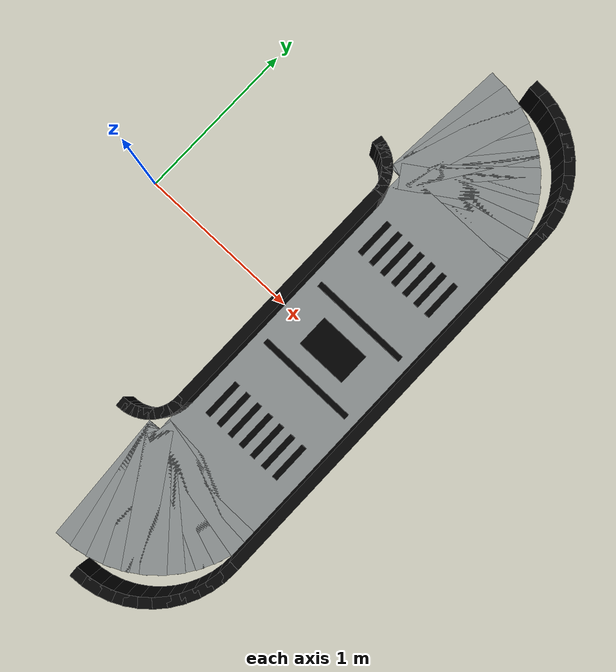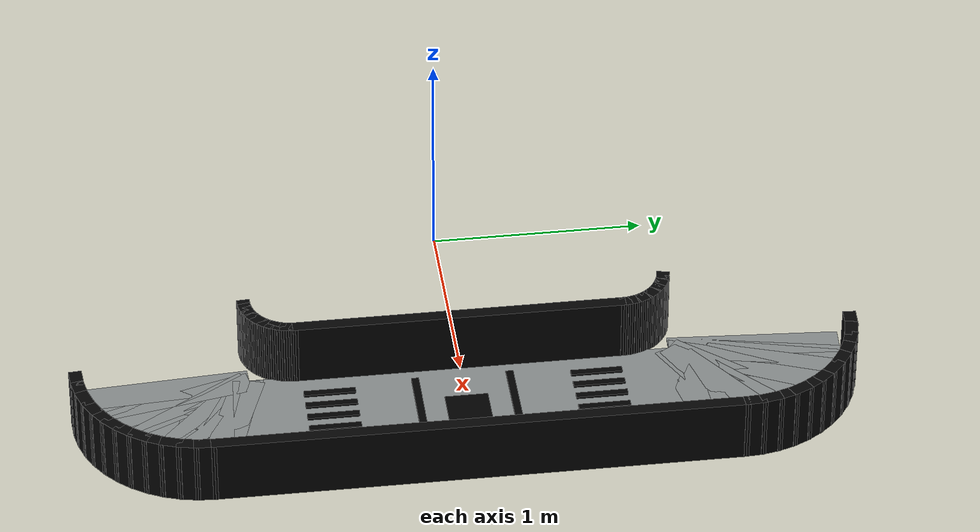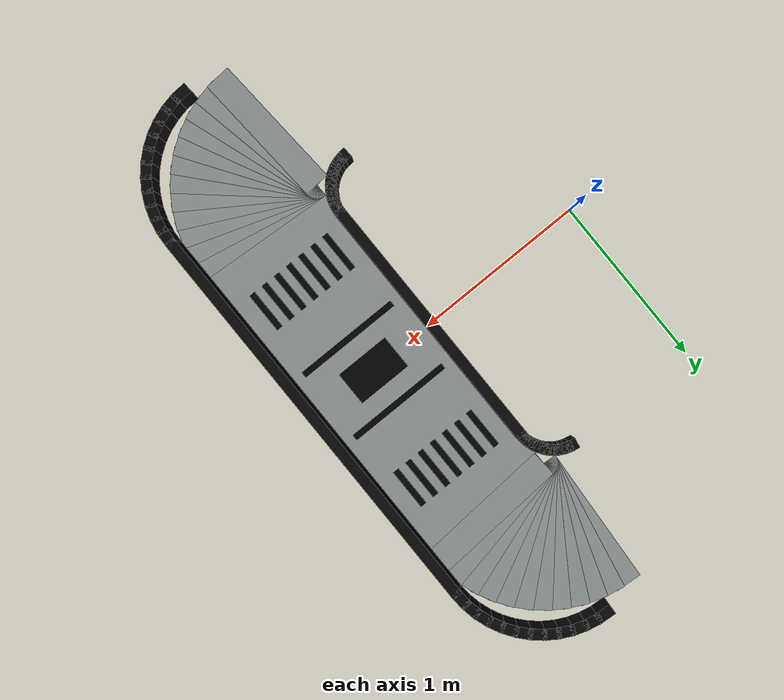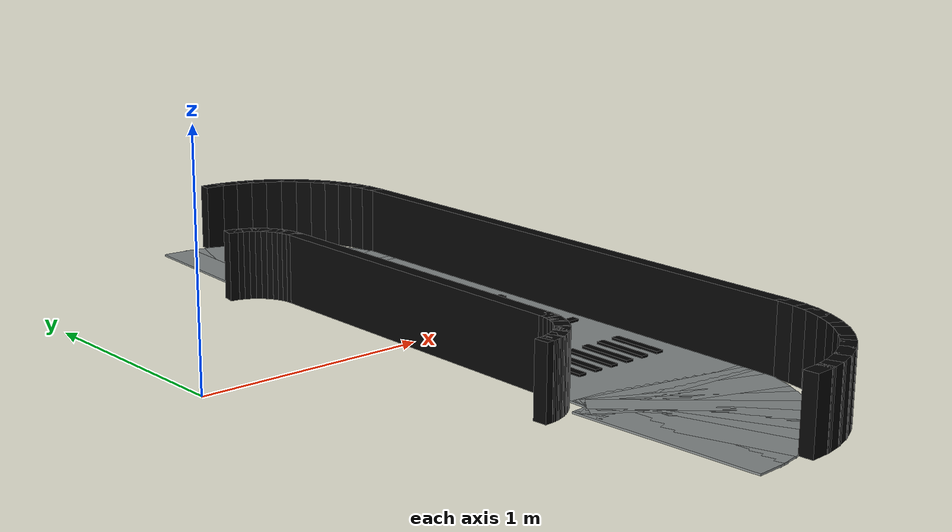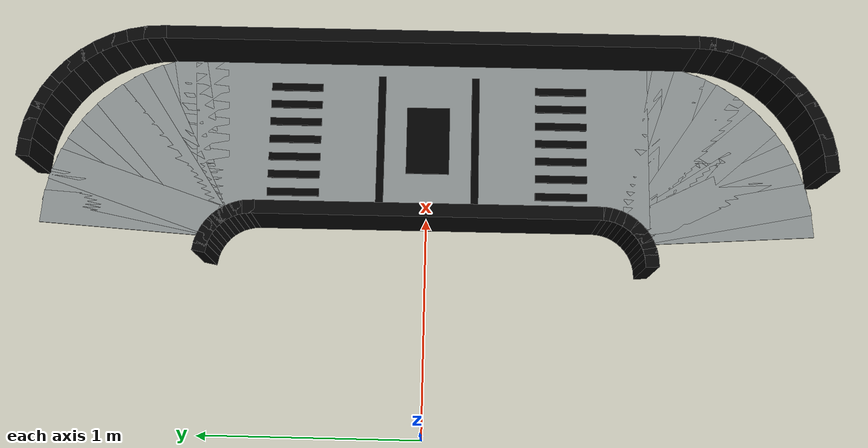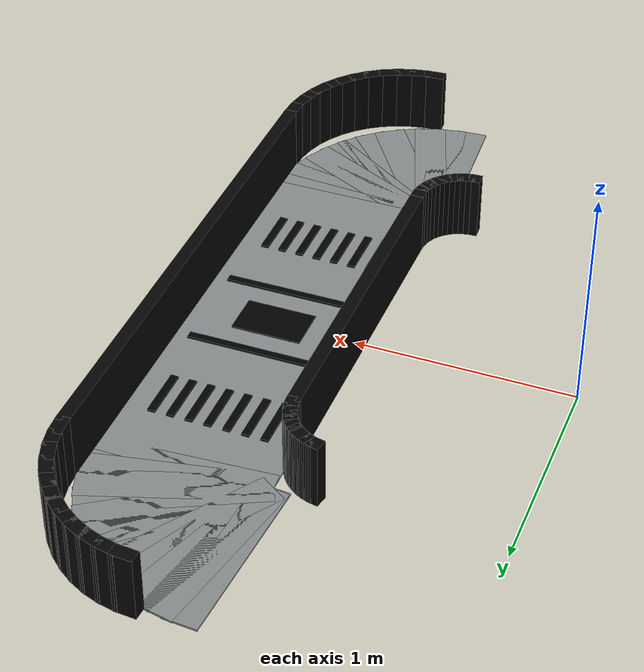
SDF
<sdf version="1.6">
 <world name="raicom_safe_city">
  <include><uri>model://sun</uri></include>
  <model name="safe_city_wall_track_80cm">
   <static>true</static>
   <link name="road_tile_01">
    <pose>1.3783 1.0061 0.0020 0 0 1.636246</pose>
    <visual name="visual">
     <geometry><box><size>0.1523 0.8000 0.0080</size></box></geometry>
     <material><ambient>0.540 0.560 0.560 1.000</ambient><diffuse>0.540 0.560 0.560 1.000</diffuse></material>
    </visual>
   </link>
   <link name="road_tile_02">
    <pose>1.3715 1.0579 0.0020 0 0 1.767146</pose>
    <visual name="visual">
     <geometry><box><size>0.1523 0.8000 0.0080</size></box></geometry>
     <material><ambient>0.540 0.560 0.560 1.000</ambient><diffuse>0.540 0.560 0.560 1.000</diffuse></material>
    </visual>
   </link>
   <link name="road_tile_03">
    <pose>1.3580 1.1083 0.0020 0 0 1.898046</pose>
    <visual name="visual">
     <geometry><box><size>0.1523 0.8000 0.0080</size></box></geometry>
     <material><ambient>0.540 0.560 0.560 1.000</ambient><diffuse>0.540 0.560 0.560 1.000</diffuse></material>
    </visual>
   </link>
   <link name="road_tile_04">
    <pose>1.3380 1.1565 0.0020 0 0 2.028945</pose>
    <visual name="visual">
     <geometry><box><size>0.1523 0.8000 0.0080</size></box></geometry>
     <material><ambient>0.540 0.560 0.560 1.000</ambient><diffuse>0.540 0.560 0.560 1.000</diffuse></material>
    </visual>
   </link>
   <link name="road_tile_05">
    <pose>1.3119 1.2018 0.0020 0 0 2.159845</pose>
    <visual name="visual">
     <geometry><box><size>0.1523 0.8000 0.0080</size></box></geometry>
     <material><ambient>0.540 0.560 0.560 1.000</ambient><diffuse>0.540 0.560 0.560 1.000</diffuse></material>
    </visual>
   </link>
   <link name="road_tile_06">
    <pose>1.2801 1.2432 0.0020 0 0 2.290745</pose>
    <visual name="visual">
     <geometry><box><size>0.1523 0.8000 0.0080</size></box></geometry>
     <material><ambient>0.540 0.560 0.560 1.000</ambient><diffuse>0.540 0.560 0.560 1.000</diffuse></material>
    </visual>
   </link>
   <link name="road_tile_07">
    <pose>1.2432 1.2801 0.0020 0 0 2.421644</pose>
    <visual name="visual">
     <geometry><box><size>0.1523 0.8000 0.0080</size></box></geometry>
     <material><ambient>0.540 0.560 0.560 1.000</ambient><diffuse>0.540 0.560 0.560 1.000</diffuse></material>
    </visual>
   </link>
   <link name="road_tile_08">
    <pose>1.2018 1.3119 0.0020 0 0 2.552544</pose>
    <visual name="visual">
     <geometry><box><size>0.1523 0.8000 0.0080</size></box></geometry>
     <material><ambient>0.540 0.560 0.560 1.000</ambient><diffuse>0.540 0.560 0.560 1.000</diffuse></material>
    </visual>
   </link>
   <link name="road_tile_09">
    <pose>1.1565 1.3380 0.0020 0 0 2.683444</pose>
    <visual name="visual">
     <geometry><box><size>0.1523 0.8000 0.0080</size></box></geometry>
     <material><ambient>0.540 0.560 0.560 1.000</ambient><diffuse>0.540 0.560 0.560 1.000</diffuse></material>
    </visual>
   </link>
   <link name="road_tile_10">
    <pose>1.1083 1.3580 0.0020 0 0 2.814343</pose>
    <visual name="visual">
     <geometry><box><size>0.1523 0.8000 0.0080</size></box></geometry>
     <material><ambient>0.540 0.560 0.560 1.000</ambient><diffuse>0.540 0.560 0.560 1.000</diffuse></material>
    </visual>
   </link>
   <link name="road_tile_11">
    <pose>1.0579 1.3715 0.0020 0 0 2.945243</pose>
    <visual name="visual">
     <geometry><box><size>0.1523 0.8000 0.0080</size></box></geometry>
     <material><ambient>0.540 0.560 0.560 1.000</ambient><diffuse>0.540 0.560 0.560 1.000</diffuse></material>
    </visual>
   </link>
   <link name="road_tile_12">
    <pose>1.0061 1.3783 0.0020 0 0 3.076143</pose>
    <visual name="visual">
     <geometry><box><size>0.1523 0.8000 0.0080</size></box></geometry>
     <material><ambient>0.540 0.560 0.560 1.000</ambient><diffuse>0.540 0.560 0.560 1.000</diffuse></material>
    </visual>
   </link>
   <link name="road_tile_40">
    <pose>1.0061 -1.3783 0.0020 0 0 0.065450</pose>
    <visual name="visual">
     <geometry><box><size>0.1523 0.8000 0.0080</size></box></geometry>
     <material><ambient>0.540 0.560 0.560 1.000</ambient><diffuse>0.540 0.560 0.560 1.000</diffuse></material>
    </visual>
   </link>
   <link name="road_tile_41">
    <pose>1.0579 -1.3715 0.0020 0 0 0.196350</pose>
    <visual name="visual">
     <geometry><box><size>0.1523 0.8000 0.0080</size></box></geometry>
     <material><ambient>0.540 0.560 0.560 1.000</ambient><diffuse>0.540 0.560 0.560 1.000</diffuse></material>
    </visual>
   </link>
   <link name="road_tile_42">
    <pose>1.1083 -1.3580 0.0020 0 0 0.327249</pose>
    <visual name="visual">
     <geometry><box><size>0.1523 0.8000 0.0080</size></box></geometry>
     <material><ambient>0.540 0.560 0.560 1.000</ambient><diffuse>0.540 0.560 0.560 1.000</diffuse></material>
    </visual>
   </link>
   <link name="road_tile_43">
    <pose>1.1565 -1.3380 0.0020 0 0 0.458149</pose>
    <visual name="visual">
     <geometry><box><size>0.1523 0.8000 0.0080</size></box></geometry>
     <material><ambient>0.540 0.560 0.560 1.000</ambient><diffuse>0.540 0.560 0.560 1.000</diffuse></material>
    </visual>
   </link>
   <link name="road_tile_44">
    <pose>1.2018 -1.3119 0.0020 0 0 0.589049</pose>
    <visual name="visual">
     <geometry><box><size>0.1523 0.8000 0.0080</size></box></geometry>
     <material><ambient>0.540 0.560 0.560 1.000</ambient><diffuse>0.540 0.560 0.560 1.000</diffuse></material>
    </visual>
   </link>
   <link name="road_tile_45">
    <pose>1.2432 -1.2801 0.0020 0 0 0.719948</pose>
    <visual name="visual">
     <geometry><box><size>0.1523 0.8000 0.0080</size></box></geometry>
     <material><ambient>0.540 0.560 0.560 1.000</ambient><diffuse>0.540 0.560 0.560 1.000</diffuse></material>
    </visual>
   </link>
   <link name="road_tile_46">
    <pose>1.2801 -1.2432 0.0020 0 0 0.850848</pose>
    <visual name="visual">
     <geometry><box><size>0.1523 0.8000 0.0080</size></box></geometry>
     <material><ambient>0.540 0.560 0.560 1.000</ambient><diffuse>0.540 0.560 0.560 1.000</diffuse></material>
    </visual>
   </link>
   <link name="road_tile_47">
    <pose>1.3119 -1.2018 0.0020 0 0 0.981748</pose>
    <visual name="visual">
     <geometry><box><size>0.1523 0.8000 0.0080</size></box></geometry>
     <material><ambient>0.540 0.560 0.560 1.000</ambient><diffuse>0.540 0.560 0.560 1.000</diffuse></material>
    </visual>
   </link>
   <link name="road_tile_48">
    <pose>1.3380 -1.1565 0.0020 0 0 1.112647</pose>
    <visual name="visual">
     <geometry><box><size>0.1523 0.8000 0.0080</size></box></geometry>
     <material><ambient>0.540 0.560 0.560 1.000</ambient><diffuse>0.540 0.560 0.560 1.000</diffuse></material>
    </visual>
   </link>
   <link name="road_tile_49">
    <pose>1.3580 -1.1083 0.0020 0 0 1.243547</pose>
    <visual name="visual">
     <geometry><box><size>0.1523 0.8000 0.0080</size></box></geometry>
     <material><ambient>0.540 0.560 0.560 1.000</ambient><diffuse>0.540 0.560 0.560 1.000</diffuse></material>
    </visual>
   </link>
   <link name="road_tile_50">
    <pose>1.3715 -1.0579 0.0020 0 0 1.374447</pose>
    <visual name="visual">
     <geometry><box><size>0.1523 0.8000 0.0080</size></box></geometry>
     <material><ambient>0.540 0.560 0.560 1.000</ambient><diffuse>0.540 0.560 0.560 1.000</diffuse></material>
    </visual>
   </link>
   <link name="road_tile_51">
    <pose>1.3783 -1.0061 0.0020 0 0 1.505346</pose>
    <visual name="visual">
     <geometry><box><size>0.1523 0.8000 0.0080</size></box></geometry>
     <material><ambient>0.540 0.560 0.560 1.000</ambient><diffuse>0.540 0.560 0.560 1.000</diffuse></material>
    </visual>
   </link>
   <link name="road_tile_52">
    <pose>1.3800 -0.0000 0.0020 0 0 1.570796</pose>
    <visual name="visual">
     <geometry><box><size>2.0600 0.8000 0.0080</size></box></geometry>
     <material><ambient>0.540 0.560 0.560 1.000</ambient><diffuse>0.540 0.560 0.560 1.000</diffuse></material>
    </visual>
   </link>
   <link name="start_cross_bar_1">
    <pose>1.3800 -0.2200 0.0120 0 0 0.000000</pose>
    <visual name="visual">
     <geometry><box><size>0.6200 0.0350 0.0100</size></box></geometry>
     <material><ambient>0.000 0.000 0.000 1.000</ambient><diffuse>0.000 0.000 0.000 1.000</diffuse></material>
    </visual>
   </link>
   <link name="start_cross_bar_2">
    <pose>1.3800 0.2200 0.0120 0 0 0.000000</pose>
    <visual name="visual">
     <geometry><box><size>0.6200 0.0350 0.0100</size></box></geometry>
     <material><ambient>0.000 0.000 0.000 1.000</ambient><diffuse>0.000 0.000 0.000 1.000</diffuse></material>
    </visual>
   </link>
   <link name="zebra_1_1">
    <pose>1.1200 -0.6200 0.0120 0 0 1.570796</pose>
    <visual name="visual">
     <geometry><box><size>0.2400 0.0350 0.0100</size></box></geometry>
     <material><ambient>0.000 0.000 0.000 1.000</ambient><diffuse>0.000 0.000 0.000 1.000</diffuse></material>
    </visual>
   </link>
   <link name="zebra_1_2">
    <pose>1.2050 -0.6200 0.0120 0 0 1.570796</pose>
    <visual name="visual">
     <geometry><box><size>0.2400 0.0350 0.0100</size></box></geometry>
     <material><ambient>0.000 0.000 0.000 1.000</ambient><diffuse>0.000 0.000 0.000 1.000</diffuse></material>
    </visual>
   </link>
   <link name="zebra_1_3">
    <pose>1.2900 -0.6200 0.0120 0 0 1.570796</pose>
    <visual name="visual">
     <geometry><box><size>0.2400 0.0350 0.0100</size></box></geometry>
     <material><ambient>0.000 0.000 0.000 1.000</ambient><diffuse>0.000 0.000 0.000 1.000</diffuse></material>
    </visual>
   </link>
   <link name="zebra_1_4">
    <pose>1.3750 -0.6200 0.0120 0 0 1.570796</pose>
    <visual name="visual">
     <geometry><box><size>0.2400 0.0350 0.0100</size></box></geometry>
     <material><ambient>0.000 0.000 0.000 1.000</ambient><diffuse>0.000 0.000 0.000 1.000</diffuse></material>
    </visual>
   </link>
   <link name="zebra_1_5">
    <pose>1.4600 -0.6200 0.0120 0 0 1.570796</pose>
    <visual name="visual">
     <geometry><box><size>0.2400 0.0350 0.0100</size></box></geometry>
     <material><ambient>0.000 0.000 0.000 1.000</ambient><diffuse>0.000 0.000 0.000 1.000</diffuse></material>
    </visual>
   </link>
   <link name="zebra_1_6">
    <pose>1.5450 -0.6200 0.0120 0 0 1.570796</pose>
    <visual name="visual">
     <geometry><box><size>0.2400 0.0350 0.0100</size></box></geometry>
     <material><ambient>0.000 0.000 0.000 1.000</ambient><diffuse>0.000 0.000 0.000 1.000</diffuse></material>
    </visual>
   </link>
   <link name="zebra_1_7">
    <pose>1.6300 -0.6200 0.0120 0 0 1.570796</pose>
    <visual name="visual">
     <geometry><box><size>0.2400 0.0350 0.0100</size></box></geometry>
     <material><ambient>0.000 0.000 0.000 1.000</ambient><diffuse>0.000 0.000 0.000 1.000</diffuse></material>
    </visual>
   </link>
   <link name="zebra_2_1">
    <pose>1.1200 0.6200 0.0120 0 0 1.570796</pose>
    <visual name="visual">
     <geometry><box><size>0.2400 0.0350 0.0100</size></box></geometry>
     <material><ambient>0.000 0.000 0.000 1.000</ambient><diffuse>0.000 0.000 0.000 1.000</diffuse></material>
    </visual>
   </link>
   <link name="zebra_2_2">
    <pose>1.2050 0.6200 0.0120 0 0 1.570796</pose>
    <visual name="visual">
     <geometry><box><size>0.2400 0.0350 0.0100</size></box></geometry>
     <material><ambient>0.000 0.000 0.000 1.000</ambient><diffuse>0.000 0.000 0.000 1.000</diffuse></material>
    </visual>
   </link>
   <link name="zebra_2_3">
    <pose>1.2900 0.6200 0.0120 0 0 1.570796</pose>
    <visual name="visual">
     <geometry><box><size>0.2400 0.0350 0.0100</size></box></geometry>
     <material><ambient>0.000 0.000 0.000 1.000</ambient><diffuse>0.000 0.000 0.000 1.000</diffuse></material>
    </visual>
   </link>
   <link name="zebra_2_4">
    <pose>1.3750 0.6200 0.0120 0 0 1.570796</pose>
    <visual name="visual">
     <geometry><box><size>0.2400 0.0350 0.0100</size></box></geometry>
     <material><ambient>0.000 0.000 0.000 1.000</ambient><diffuse>0.000 0.000 0.000 1.000</diffuse></material>
    </visual>
   </link>
   <link name="zebra_2_5">
    <pose>1.4600 0.6200 0.0120 0 0 1.570796</pose>
    <visual name="visual">
     <geometry><box><size>0.2400 0.0350 0.0100</size></box></geometry>
     <material><ambient>0.000 0.000 0.000 1.000</ambient><diffuse>0.000 0.000 0.000 1.000</diffuse></material>
    </visual>
   </link>
   <link name="zebra_2_6">
    <pose>1.5450 0.6200 0.0120 0 0 1.570796</pose>
    <visual name="visual">
     <geometry><box><size>0.2400 0.0350 0.0100</size></box></geometry>
     <material><ambient>0.000 0.000 0.000 1.000</ambient><diffuse>0.000 0.000 0.000 1.000</diffuse></material>
    </visual>
   </link>
   <link name="zebra_2_7">
    <pose>1.6300 0.6200 0.0120 0 0 1.570796</pose>
    <visual name="visual">
     <geometry><box><size>0.2400 0.0350 0.0100</size></box></geometry>
     <material><ambient>0.000 0.000 0.000 1.000</ambient><diffuse>0.000 0.000 0.000 1.000</diffuse></material>
    </visual>
   </link>
   <link name="start_pad">
    <pose>1.3800 0.0000 0.0100 0 0 0.000000</pose>
    <visual name="visual">
     <geometry><box><size>0.3200 0.2000 0.0060</size></box></geometry>
     <material><ambient>0.000 0.000 0.000 1.000</ambient><diffuse>0.000 0.000 0.000 1.000</diffuse></material>
    </visual>
   </link>
   <link name="track_wall_01">
    <pose>1.7775 1.2379 0.1500 0 0 1.636246</pose>
    <collision name="collision"><geometry><box><size>0.1009 0.0600 0.3000</size></box></geometry></collision>
    <visual name="visual">
     <geometry><box><size>0.1009 0.0600 0.3000</size></box></geometry>
     <material><ambient>0.020 0.020 0.020 1.000</ambient><diffuse>0.020 0.020 0.020 1.000</diffuse></material>
    </visual>
   </link>
   <link name="track_wall_02">
    <pose>1.7676 1.3129 0.1500 0 0 1.767146</pose>
    <collision name="collision"><geometry><box><size>0.1009 0.0600 0.3000</size></box></geometry></collision>
    <visual name="visual">
     <geometry><box><size>0.1009 0.0600 0.3000</size></box></geometry>
     <material><ambient>0.020 0.020 0.020 1.000</ambient><diffuse>0.020 0.020 0.020 1.000</diffuse></material>
    </visual>
   </link>
   <link name="track_wall_03">
    <pose>1.7480 1.3860 0.1500 0 0 1.898046</pose>
    <collision name="collision"><geometry><box><size>0.1009 0.0600 0.3000</size></box></geometry></collision>
    <visual name="visual">
     <geometry><box><size>0.1009 0.0600 0.3000</size></box></geometry>
     <material><ambient>0.020 0.020 0.020 1.000</ambient><diffuse>0.020 0.020 0.020 1.000</diffuse></material>
    </visual>
   </link>
   <link name="track_wall_04">
    <pose>1.7191 1.4560 0.1500 0 0 2.028945</pose>
    <collision name="collision"><geometry><box><size>0.1009 0.0600 0.3000</size></box></geometry></collision>
    <visual name="visual">
     <geometry><box><size>0.1009 0.0600 0.3000</size></box></geometry>
     <material><ambient>0.020 0.020 0.020 1.000</ambient><diffuse>0.020 0.020 0.020 1.000</diffuse></material>
    </visual>
   </link>
   <link name="track_wall_05">
    <pose>1.6812 1.5215 0.1500 0 0 2.159845</pose>
    <collision name="collision"><geometry><box><size>0.1009 0.0600 0.3000</size></box></geometry></collision>
    <visual name="visual">
     <geometry><box><size>0.1009 0.0600 0.3000</size></box></geometry>
     <material><ambient>0.020 0.020 0.020 1.000</ambient><diffuse>0.020 0.020 0.020 1.000</diffuse></material>
    </visual>
   </link>
   <link name="track_wall_06">
    <pose>1.6351 1.5816 0.1500 0 0 2.290745</pose>
    <collision name="collision"><geometry><box><size>0.1009 0.0600 0.3000</size></box></geometry></collision>
    <visual name="visual">
     <geometry><box><size>0.1009 0.0600 0.3000</size></box></geometry>
     <material><ambient>0.020 0.020 0.020 1.000</ambient><diffuse>0.020 0.020 0.020 1.000</diffuse></material>
    </visual>
   </link>
   <link name="track_wall_07">
    <pose>1.5816 1.6351 0.1500 0 0 2.421644</pose>
    <collision name="collision"><geometry><box><size>0.1009 0.0600 0.3000</size></box></geometry></collision>
    <visual name="visual">
     <geometry><box><size>0.1009 0.0600 0.3000</size></box></geometry>
     <material><ambient>0.020 0.020 0.020 1.000</ambient><diffuse>0.020 0.020 0.020 1.000</diffuse></material>
    </visual>
   </link>
   <link name="track_wall_08">
    <pose>1.5215 1.6812 0.1500 0 0 2.552544</pose>
    <collision name="collision"><geometry><box><size>0.1009 0.0600 0.3000</size></box></geometry></collision>
    <visual name="visual">
     <geometry><box><size>0.1009 0.0600 0.3000</size></box></geometry>
     <material><ambient>0.020 0.020 0.020 1.000</ambient><diffuse>0.020 0.020 0.020 1.000</diffuse></material>
    </visual>
   </link>
   <link name="track_wall_09">
    <pose>1.4560 1.7191 0.1500 0 0 2.683444</pose>
    <collision name="collision"><geometry><box><size>0.1009 0.0600 0.3000</size></box></geometry></collision>
    <visual name="visual">
     <geometry><box><size>0.1009 0.0600 0.3000</size></box></geometry>
     <material><ambient>0.020 0.020 0.020 1.000</ambient><diffuse>0.020 0.020 0.020 1.000</diffuse></material>
    </visual>
   </link>
   <link name="track_wall_10">
    <pose>1.3860 1.7480 0.1500 0 0 2.814343</pose>
    <collision name="collision"><geometry><box><size>0.1009 0.0600 0.3000</size></box></geometry></collision>
    <visual name="visual">
     <geometry><box><size>0.1009 0.0600 0.3000</size></box></geometry>
     <material><ambient>0.020 0.020 0.020 1.000</ambient><diffuse>0.020 0.020 0.020 1.000</diffuse></material>
    </visual>
   </link>
   <link name="track_wall_11">
    <pose>1.3129 1.7676 0.1500 0 0 2.945243</pose>
    <collision name="collision"><geometry><box><size>0.1009 0.0600 0.3000</size></box></geometry></collision>
    <visual name="visual">
     <geometry><box><size>0.1009 0.0600 0.3000</size></box></geometry>
     <material><ambient>0.020 0.020 0.020 1.000</ambient><diffuse>0.020 0.020 0.020 1.000</diffuse></material>
    </visual>
   </link>
   <link name="track_wall_12">
    <pose>1.2379 1.7775 0.1500 0 0 3.076143</pose>
    <collision name="collision"><geometry><box><size>0.1009 0.0600 0.3000</size></box></geometry></collision>
    <visual name="visual">
     <geometry><box><size>0.1009 0.0600 0.3000</size></box></geometry>
     <material><ambient>0.020 0.020 0.020 1.000</ambient><diffuse>0.020 0.020 0.020 1.000</diffuse></material>
    </visual>
   </link>
   <link name="track_wall_40">
    <pose>1.2379 -1.7775 0.1500 0 0 0.065450</pose>
    <collision name="collision"><geometry><box><size>0.1009 0.0600 0.3000</size></box></geometry></collision>
    <visual name="visual">
     <geometry><box><size>0.1009 0.0600 0.3000</size></box></geometry>
     <material><ambient>0.020 0.020 0.020 1.000</ambient><diffuse>0.020 0.020 0.020 1.000</diffuse></material>
    </visual>
   </link>
   <link name="track_wall_41">
    <pose>1.3129 -1.7676 0.1500 0 0 0.196350</pose>
    <collision name="collision"><geometry><box><size>0.1009 0.0600 0.3000</size></box></geometry></collision>
    <visual name="visual">
     <geometry><box><size>0.1009 0.0600 0.3000</size></box></geometry>
     <material><ambient>0.020 0.020 0.020 1.000</ambient><diffuse>0.020 0.020 0.020 1.000</diffuse></material>
    </visual>
   </link>
   <link name="track_wall_42">
    <pose>1.3860 -1.7480 0.1500 0 0 0.327249</pose>
    <collision name="collision"><geometry><box><size>0.1009 0.0600 0.3000</size></box></geometry></collision>
    <visual name="visual">
     <geometry><box><size>0.1009 0.0600 0.3000</size></box></geometry>
     <material><ambient>0.020 0.020 0.020 1.000</ambient><diffuse>0.020 0.020 0.020 1.000</diffuse></material>
    </visual>
   </link>
   <link name="track_wall_43">
    <pose>1.4560 -1.7191 0.1500 0 0 0.458149</pose>
    <collision name="collision"><geometry><box><size>0.1009 0.0600 0.3000</size></box></geometry></collision>
    <visual name="visual">
     <geometry><box><size>0.1009 0.0600 0.3000</size></box></geometry>
     <material><ambient>0.020 0.020 0.020 1.000</ambient><diffuse>0.020 0.020 0.020 1.000</diffuse></material>
    </visual>
   </link>
   <link name="track_wall_44">
    <pose>1.5215 -1.6812 0.1500 0 0 0.589049</pose>
    <collision name="collision"><geometry><box><size>0.1009 0.0600 0.3000</size></box></geometry></collision>
    <visual name="visual">
     <geometry><box><size>0.1009 0.0600 0.3000</size></box></geometry>
     <material><ambient>0.020 0.020 0.020 1.000</ambient><diffuse>0.020 0.020 0.020 1.000</diffuse></material>
    </visual>
   </link>
   <link name="track_wall_45">
    <pose>1.5816 -1.6351 0.1500 0 0 0.719948</pose>
    <collision name="collision"><geometry><box><size>0.1009 0.0600 0.3000</size></box></geometry></collision>
    <visual name="visual">
     <geometry><box><size>0.1009 0.0600 0.3000</size></box></geometry>
     <material><ambient>0.020 0.020 0.020 1.000</ambient><diffuse>0.020 0.020 0.020 1.000</diffuse></material>
    </visual>
   </link>
   <link name="track_wall_46">
    <pose>1.6351 -1.5816 0.1500 0 0 0.850848</pose>
    <collision name="collision"><geometry><box><size>0.1009 0.0600 0.3000</size></box></geometry></collision>
    <visual name="visual">
     <geometry><box><size>0.1009 0.0600 0.3000</size></box></geometry>
     <material><ambient>0.020 0.020 0.020 1.000</ambient><diffuse>0.020 0.020 0.020 1.000</diffuse></material>
    </visual>
   </link>
   <link name="track_wall_47">
    <pose>1.6812 -1.5215 0.1500 0 0 0.981748</pose>
    <collision name="collision"><geometry><box><size>0.1009 0.0600 0.3000</size></box></geometry></collision>
    <visual name="visual">
     <geometry><box><size>0.1009 0.0600 0.3000</size></box></geometry>
     <material><ambient>0.020 0.020 0.020 1.000</ambient><diffuse>0.020 0.020 0.020 1.000</diffuse></material>
    </visual>
   </link>
   <link name="track_wall_48">
    <pose>1.7191 -1.4560 0.1500 0 0 1.112647</pose>
    <collision name="collision"><geometry><box><size>0.1009 0.0600 0.3000</size></box></geometry></collision>
    <visual name="visual">
     <geometry><box><size>0.1009 0.0600 0.3000</size></box></geometry>
     <material><ambient>0.020 0.020 0.020 1.000</ambient><diffuse>0.020 0.020 0.020 1.000</diffuse></material>
    </visual>
   </link>
   <link name="track_wall_49">
    <pose>1.7480 -1.3860 0.1500 0 0 1.243547</pose>
    <collision name="collision"><geometry><box><size>0.1009 0.0600 0.3000</size></box></geometry></collision>
    <visual name="visual">
     <geometry><box><size>0.1009 0.0600 0.3000</size></box></geometry>
     <material><ambient>0.020 0.020 0.020 1.000</ambient><diffuse>0.020 0.020 0.020 1.000</diffuse></material>
    </visual>
   </link>
   <link name="track_wall_50">
    <pose>1.7676 -1.3129 0.1500 0 0 1.374447</pose>
    <collision name="collision"><geometry><box><size>0.1009 0.0600 0.3000</size></box></geometry></collision>
    <visual name="visual">
     <geometry><box><size>0.1009 0.0600 0.3000</size></box></geometry>
     <material><ambient>0.020 0.020 0.020 1.000</ambient><diffuse>0.020 0.020 0.020 1.000</diffuse></material>
    </visual>
   </link>
   <link name="track_wall_51">
    <pose>1.7775 -1.2379 0.1500 0 0 1.505346</pose>
    <collision name="collision"><geometry><box><size>0.1009 0.0600 0.3000</size></box></geometry></collision>
    <visual name="visual">
     <geometry><box><size>0.1009 0.0600 0.3000</size></box></geometry>
     <material><ambient>0.020 0.020 0.020 1.000</ambient><diffuse>0.020 0.020 0.020 1.000</diffuse></material>
    </visual>
   </link>
   <link name="track_wall_52">
    <pose>1.7800 -0.0000 0.1500 0 0 1.570796</pose>
    <collision name="collision"><geometry><box><size>2.4250 0.0600 0.3000</size></box></geometry></collision>
    <visual name="visual">
     <geometry><box><size>2.4250 0.0600 0.3000</size></box></geometry>
     <material><ambient>0.020 0.020 0.020 1.000</ambient><diffuse>0.020 0.020 0.020 1.000</diffuse></material>
    </visual>
   </link>
   <link name="track_wall_53">
    <pose>0.9791 0.7744 0.1500 0 0 1.636246</pose>
    <collision name="collision"><geometry><box><size>0.0538 0.0600 0.3000</size></box></geometry></collision>
    <visual name="visual">
     <geometry><box><size>0.0538 0.0600 0.3000</size></box></geometry>
     <material><ambient>0.020 0.020 0.020 1.000</ambient><diffuse>0.020 0.020 0.020 1.000</diffuse></material>
    </visual>
   </link>
   <link name="track_wall_54">
    <pose>0.9753 0.8028 0.1500 0 0 1.767146</pose>
    <collision name="collision"><geometry><box><size>0.0538 0.0600 0.3000</size></box></geometry></collision>
    <visual name="visual">
     <geometry><box><size>0.0538 0.0600 0.3000</size></box></geometry>
     <material><ambient>0.020 0.020 0.020 1.000</ambient><diffuse>0.020 0.020 0.020 1.000</diffuse></material>
    </visual>
   </link>
   <link name="track_wall_55">
    <pose>0.9679 0.8306 0.1500 0 0 1.898046</pose>
    <collision name="collision"><geometry><box><size>0.0538 0.0600 0.3000</size></box></geometry></collision>
    <visual name="visual">
     <geometry><box><size>0.0538 0.0600 0.3000</size></box></geometry>
     <material><ambient>0.020 0.020 0.020 1.000</ambient><diffuse>0.020 0.020 0.020 1.000</diffuse></material>
    </visual>
   </link>
   <link name="track_wall_56">
    <pose>0.9569 0.8571 0.1500 0 0 2.028945</pose>
    <collision name="collision"><geometry><box><size>0.0538 0.0600 0.3000</size></box></geometry></collision>
    <visual name="visual">
     <geometry><box><size>0.0538 0.0600 0.3000</size></box></geometry>
     <material><ambient>0.020 0.020 0.020 1.000</ambient><diffuse>0.020 0.020 0.020 1.000</diffuse></material>
    </visual>
   </link>
   <link name="track_wall_57">
    <pose>0.9425 0.8820 0.1500 0 0 2.159845</pose>
    <collision name="collision"><geometry><box><size>0.0538 0.0600 0.3000</size></box></geometry></collision>
    <visual name="visual">
     <geometry><box><size>0.0538 0.0600 0.3000</size></box></geometry>
     <material><ambient>0.020 0.020 0.020 1.000</ambient><diffuse>0.020 0.020 0.020 1.000</diffuse></material>
    </visual>
   </link>
   <link name="track_wall_58">
    <pose>0.9251 0.9047 0.1500 0 0 2.290745</pose>
    <collision name="collision"><geometry><box><size>0.0538 0.0600 0.3000</size></box></geometry></collision>
    <visual name="visual">
     <geometry><box><size>0.0538 0.0600 0.3000</size></box></geometry>
     <material><ambient>0.020 0.020 0.020 1.000</ambient><diffuse>0.020 0.020 0.020 1.000</diffuse></material>
    </visual>
   </link>
   <link name="track_wall_59">
    <pose>0.9047 0.9251 0.1500 0 0 2.421644</pose>
    <collision name="collision"><geometry><box><size>0.0538 0.0600 0.3000</size></box></geometry></collision>
    <visual name="visual">
     <geometry><box><size>0.0538 0.0600 0.3000</size></box></geometry>
     <material><ambient>0.020 0.020 0.020 1.000</ambient><diffuse>0.020 0.020 0.020 1.000</diffuse></material>
    </visual>
   </link>
   <link name="track_wall_60">
    <pose>0.8820 0.9425 0.1500 0 0 2.552544</pose>
    <collision name="collision"><geometry><box><size>0.0538 0.0600 0.3000</size></box></geometry></collision>
    <visual name="visual">
     <geometry><box><size>0.0538 0.0600 0.3000</size></box></geometry>
     <material><ambient>0.020 0.020 0.020 1.000</ambient><diffuse>0.020 0.020 0.020 1.000</diffuse></material>
    </visual>
   </link>
   <link name="track_wall_61">
    <pose>0.8571 0.9569 0.1500 0 0 2.683444</pose>
    <collision name="collision"><geometry><box><size>0.0538 0.0600 0.3000</size></box></geometry></collision>
    <visual name="visual">
     <geometry><box><size>0.0538 0.0600 0.3000</size></box></geometry>
     <material><ambient>0.020 0.020 0.020 1.000</ambient><diffuse>0.020 0.020 0.020 1.000</diffuse></material>
    </visual>
   </link>
   <link name="track_wall_62">
    <pose>0.8306 0.9679 0.1500 0 0 2.814343</pose>
    <collision name="collision"><geometry><box><size>0.0538 0.0600 0.3000</size></box></geometry></collision>
    <visual name="visual">
     <geometry><box><size>0.0538 0.0600 0.3000</size></box></geometry>
     <material><ambient>0.020 0.020 0.020 1.000</ambient><diffuse>0.020 0.020 0.020 1.000</diffuse></material>
    </visual>
   </link>
   <link name="track_wall_63">
    <pose>0.8028 0.9753 0.1500 0 0 2.945243</pose>
    <collision name="collision"><geometry><box><size>0.0538 0.0600 0.3000</size></box></geometry></collision>
    <visual name="visual">
     <geometry><box><size>0.0538 0.0600 0.3000</size></box></geometry>
     <material><ambient>0.020 0.020 0.020 1.000</ambient><diffuse>0.020 0.020 0.020 1.000</diffuse></material>
    </visual>
   </link>
   <link name="track_wall_92">
    <pose>0.7744 -0.9791 0.1500 0 0 0.065450</pose>
    <collision name="collision"><geometry><box><size>0.0538 0.0600 0.3000</size></box></geometry></collision>
    <visual name="visual">
     <geometry><box><size>0.0538 0.0600 0.3000</size></box></geometry>
     <material><ambient>0.020 0.020 0.020 1.000</ambient><diffuse>0.020 0.020 0.020 1.000</diffuse></material>
    </visual>
   </link>
   <link name="track_wall_93">
    <pose>0.8028 -0.9753 0.1500 0 0 0.196350</pose>
    <collision name="collision"><geometry><box><size>0.0538 0.0600 0.3000</size></box></geometry></collision>
    <visual name="visual">
     <geometry><box><size>0.0538 0.0600 0.3000</size></box></geometry>
     <material><ambient>0.020 0.020 0.020 1.000</ambient><diffuse>0.020 0.020 0.020 1.000</diffuse></material>
    </visual>
   </link>
   <link name="track_wall_94">
    <pose>0.8306 -0.9679 0.1500 0 0 0.327249</pose>
    <collision name="collision"><geometry><box><size>0.0538 0.0600 0.3000</size></box></geometry></collision>
    <visual name="visual">
     <geometry><box><size>0.0538 0.0600 0.3000</size></box></geometry>
     <material><ambient>0.020 0.020 0.020 1.000</ambient><diffuse>0.020 0.020 0.020 1.000</diffuse></material>
    </visual>
   </link>
   <link name="track_wall_95">
    <pose>0.8571 -0.9569 0.1500 0 0 0.458149</pose>
    <collision name="collision"><geometry><box><size>0.0538 0.0600 0.3000</size></box></geometry></collision>
    <visual name="visual">
     <geometry><box><size>0.0538 0.0600 0.3000</size></box></geometry>
     <material><ambient>0.020 0.020 0.020 1.000</ambient><diffuse>0.020 0.020 0.020 1.000</diffuse></material>
    </visual>
   </link>
   <link name="track_wall_96">
    <pose>0.8820 -0.9425 0.1500 0 0 0.589049</pose>
    <collision name="collision"><geometry><box><size>0.0538 0.0600 0.3000</size></box></geometry></collision>
    <visual name="visual">
     <geometry><box><size>0.0538 0.0600 0.3000</size></box></geometry>
     <material><ambient>0.020 0.020 0.020 1.000</ambient><diffuse>0.020 0.020 0.020 1.000</diffuse></material>
    </visual>
   </link>
   <link name="track_wall_97">
    <pose>0.9047 -0.9251 0.1500 0 0 0.719948</pose>
    <collision name="collision"><geometry><box><size>0.0538 0.0600 0.3000</size></box></geometry></collision>
    <visual name="visual">
     <geometry><box><size>0.0538 0.0600 0.3000</size></box></geometry>
     <material><ambient>0.020 0.020 0.020 1.000</ambient><diffuse>0.020 0.020 0.020 1.000</diffuse></material>
    </visual>
   </link>
   <link name="track_wall_98">
    <pose>0.9251 -0.9047 0.1500 0 0 0.850848</pose>
    <collision name="collision"><geometry><box><size>0.0538 0.0600 0.3000</size></box></geometry></collision>
    <visual name="visual">
     <geometry><box><size>0.0538 0.0600 0.3000</size></box></geometry>
     <material><ambient>0.020 0.020 0.020 1.000</ambient><diffuse>0.020 0.020 0.020 1.000</diffuse></material>
    </visual>
   </link>
   <link name="track_wall_99">
    <pose>0.9425 -0.8820 0.1500 0 0 0.981748</pose>
    <collision name="collision"><geometry><box><size>0.0538 0.0600 0.3000</size></box></geometry></collision>
    <visual name="visual">
     <geometry><box><size>0.0538 0.0600 0.3000</size></box></geometry>
     <material><ambient>0.020 0.020 0.020 1.000</ambient><diffuse>0.020 0.020 0.020 1.000</diffuse></material>
    </visual>
   </link>
   <link name="track_wall_100">
    <pose>0.9569 -0.8571 0.1500 0 0 1.112647</pose>
    <collision name="collision"><geometry><box><size>0.0538 0.0600 0.3000</size></box></geometry></collision>
    <visual name="visual">
     <geometry><box><size>0.0538 0.0600 0.3000</size></box></geometry>
     <material><ambient>0.020 0.020 0.020 1.000</ambient><diffuse>0.020 0.020 0.020 1.000</diffuse></material>
    </visual>
   </link>
   <link name="track_wall_101">
    <pose>0.9679 -0.8306 0.1500 0 0 1.243547</pose>
    <collision name="collision"><geometry><box><size>0.0538 0.0600 0.3000</size></box></geometry></collision>
    <visual name="visual">
     <geometry><box><size>0.0538 0.0600 0.3000</size></box></geometry>
     <material><ambient>0.020 0.020 0.020 1.000</ambient><diffuse>0.020 0.020 0.020 1.000</diffuse></material>
    </visual>
   </link>
   <link name="track_wall_102">
    <pose>0.9753 -0.8028 0.1500 0 0 1.374447</pose>
    <collision name="collision"><geometry><box><size>0.0538 0.0600 0.3000</size></box></geometry></collision>
    <visual name="visual">
     <geometry><box><size>0.0538 0.0600 0.3000</size></box></geometry>
     <material><ambient>0.020 0.020 0.020 1.000</ambient><diffuse>0.020 0.020 0.020 1.000</diffuse></material>
    </visual>
   </link>
   <link name="track_wall_103">
    <pose>0.9791 -0.7744 0.1500 0 0 1.505346</pose>
    <collision name="collision"><geometry><box><size>0.0538 0.0600 0.3000</size></box></geometry></collision>
    <visual name="visual">
     <geometry><box><size>0.0538 0.0600 0.3000</size></box></geometry>
     <material><ambient>0.020 0.020 0.020 1.000</ambient><diffuse>0.020 0.020 0.020 1.000</diffuse></material>
    </visual>
   </link>
   <link name="track_wall_104">
    <pose>0.9800 0.0000 0.1500 0 0 1.570796</pose>
    <collision name="collision"><geometry><box><size>1.5450 0.0600 0.3000</size></box></geometry></collision>
    <visual name="visual">
     <geometry><box><size>1.5450 0.0600 0.3000</size></box></geometry>
     <material><ambient>0.020 0.020 0.020 1.000</ambient><diffuse>0.020 0.020 0.020 1.000</diffuse></material>
    </visual>
   </link>
  </model>
 </world>
</sdf>
